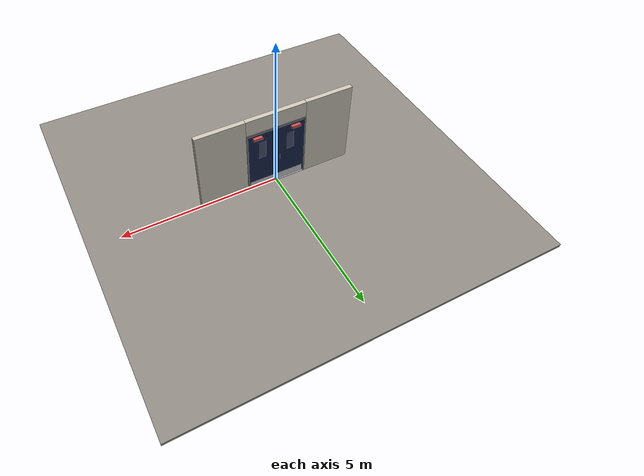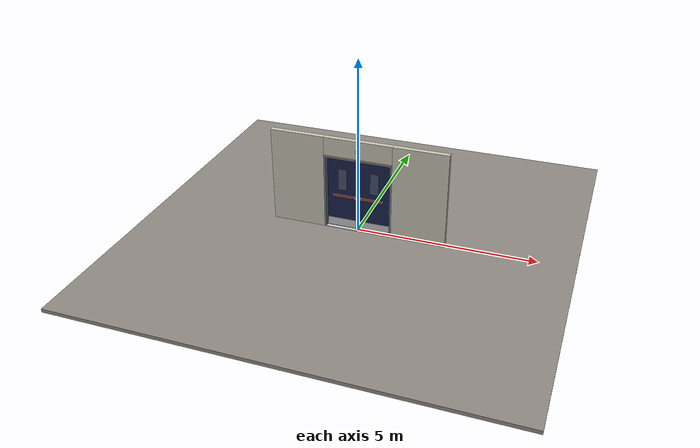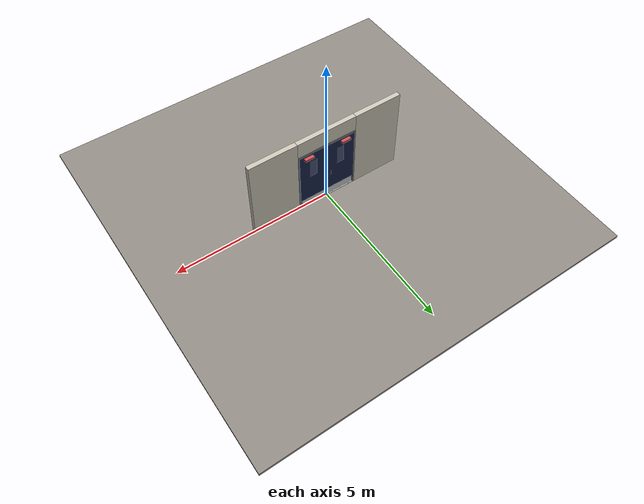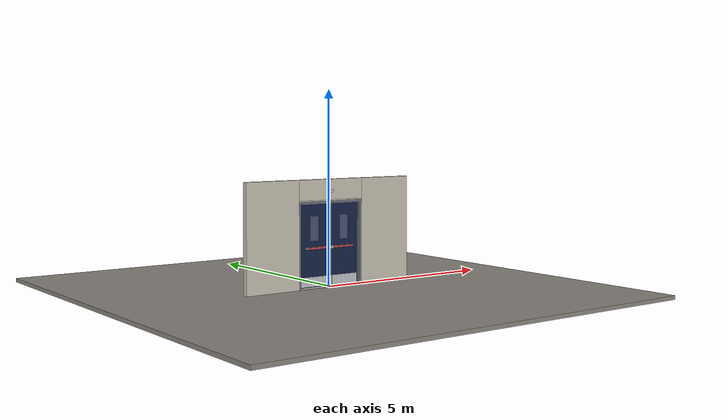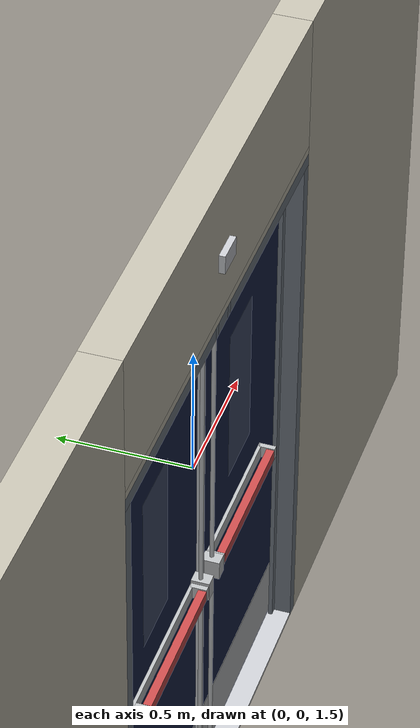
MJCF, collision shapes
<?xml version="1.0" ?>
<mujoco model="db0871_swing_double_full">
  <compiler angle="radian" meshdir="../../hardware" texturedir="../../textures" autolimits="true" inertiafromgeom="false"/>
  <option timestep="0.002" integrator="implicitfast" cone="elliptic" impratio="10" noslip_iterations="3">
    <flag multiccd="enable"/>
  </option>
  <size memory="16M"/>
  <default>
    <geom condim="4" solref="0.005 1" solimp="0.95 0.99 0.001"/>
    <joint solreflimit="0.005 1" solimplimit="0.95 0.99 0.001"/>
    <tendon solreflimit="0.005 1"/>
    <equality solref="0.002 1"/>
  </default>
  <visual>
    <headlight ambient="0.4 0.4 0.4" diffuse="0.7 0.7 0.7" specular="0.2 0.2 0.2"/>
    <quality shadowsize="4096"/>
    <map znear="0.01" zfar="60"/>
  </visual>
  <asset>
    <mesh name="closer_body_fdc4667657" file="closer_body_fdc4667657.obj"/>
    <mesh name="exit_sign_a6449bfa2c" file="exit_sign_a6449bfa2c.obj"/>
    <mesh name="hinge_e22b26c0c1" file="hinge_e22b26c0c1.obj"/>
    <mesh name="hinge_jamb_e1d088f8dc" file="hinge_jamb_e1d088f8dc.obj"/>
    <mesh name="pull_1e5d69a91a" file="pull_1e5d69a91a.obj"/>
    <mesh name="touchbar_pad_2729a067b4" file="touchbar_pad_2729a067b4.obj"/>
    <material name="mat_floor" rgba="0.55 0.53 0.5 1" specular="0.2" shininess="0.15" reflectance="0"/>
    <material name="mat_wall" rgba="0.78 0.76 0.7 1" specular="0.2" shininess="0.1" reflectance="0"/>
    <material name="mat_leaf_a" rgba="0.09 0.13 0.28 1" specular="0.23" shininess="0.64" reflectance="0.02"/>
    <material name="mat_glass" rgba="0.85 0.92 0.95 0.25" specular="0.2" shininess="0.95" reflectance="0.1"/>
    <material name="mat_hinge" rgba="0.65 0.66 0.68 1" specular="0.74" shininess="0.5" reflectance="0.36"/>
    <material name="mat_op_stainless" rgba="0.75 0.76 0.77 1" specular="0.8" shininess="0.65" reflectance="0.4"/>
    <material name="mat_bolt" rgba="0.75 0.76 0.77 1" specular="0.8" shininess="0.65" reflectance="0.4"/>
    <material name="mat_closer" rgba="0.22 0.17 0.13 1" specular="0.8" shininess="0.6" reflectance="0.4"/>
    <material name="mat_kick" rgba="0.75 0.76 0.77 1" specular="0.8" shininess="0.65" reflectance="0.4"/>
    <material name="mat_exit_sign" rgba="0.85 0.1 0.1 1" specular="0.2" shininess="0.6" reflectance="0"/>
    <material name="mat_sign_bracket" rgba="0.8 0.81 0.83 1" specular="0.8" shininess="0.6" reflectance="0.4"/>
    <material name="mat_leaf_b" rgba="0.09 0.13 0.28 1" specular="0.23" shininess="0.64" reflectance="0.02"/>
    <material name="mat_frame" rgba="0.45 0.48 0.52 1" specular="0.32" shininess="0.6" reflectance="0.08"/>
    <material name="mat_threshold" rgba="0.8 0.81 0.83 1" specular="0.8" shininess="0.6" reflectance="0.4"/>
    <material name="mat_astragal" rgba="0.8 0.81 0.83 1" specular="0.8" shininess="0.6" reflectance="0.4"/>
    <texture name="skybox" type="skybox" builtin="gradient" rgb1="0.6 0.7 0.85" rgb2="0.9 0.92 0.95" width="256" height="256"/>
  </asset>
  <worldbody>
    <light name="sun" pos="1.5 -2.5 4" dir="-0.3 0.5 -0.8" directional="true" diffuse="0.8 0.8 0.8" specular="0.3 0.3 0.3" castshadow="true"/>
    <light name="fill" pos="-1.5 2.5 3" dir="0.3 -0.5 -0.7" directional="true" diffuse="0.35 0.35 0.4" castshadow="false"/>
    <camera name="robot_view" pos="0 -2.668312 1.812087" xyaxes="1 0 0 0 0.26963 0.962964" fovy="52"/>
    <camera name="far_view" pos="0 2.607312 1.812087" xyaxes="-1 0 0 0 -0.26963 0.962964" fovy="52"/>
    <camera name="iso" pos="-2.004737 -2.246262 2.234138" xyaxes="0.741536 -0.670913 0 0.242917 0.268487 0.932151" fovy="46"/>
    <camera name="detail_handle" pos="0.0885 -0.718 1.296" xyaxes="0.97561 0.219512 0 -0.070934 0.315262 0.94635" fovy="38"/>
    <geom name="floor" type="box" size="6 6 0.05" pos="0 0 -0.05" material="mat_floor" group="0" contype="1" conaffinity="1" friction="0.8 0.005 0.0001" density="2400"/>
    <geom name="wall_left" type="box" size="0.76575 0.0725 1.3735" pos="-1.73425 -0.0305 1.3735" material="mat_wall" group="0" contype="1" conaffinity="1" friction="0.6 0.005 0.0001" density="800"/>
    <geom name="wall_right" type="box" size="0.76575 0.0725 1.3735" pos="1.73425 -0.0305 1.3735" material="mat_wall" group="0" contype="1" conaffinity="1" friction="0.6 0.005 0.0001" density="800"/>
    <geom name="wall_header" type="box" size="0.9685 0.0725 0.26" pos="0 -0.0305 2.487" material="mat_wall" group="0" contype="1" conaffinity="1" friction="0.6 0.005 0.0001" density="800"/>
    <geom name="hinge_0_jamb" type="mesh" mesh="hinge_jamb_e1d088f8dc" pos="-0.9155 0.029 0.279" quat="0 1 0 0" material="mat_hinge" group="1" contype="0" conaffinity="0" density="7850"/>
    <geom name="hinge_1_jamb" type="mesh" mesh="hinge_jamb_e1d088f8dc" pos="-0.9155 0.029 1.086" quat="0 1 0 0" material="mat_hinge" group="1" contype="0" conaffinity="0" density="7850"/>
    <geom name="hinge_2_jamb" type="mesh" mesh="hinge_jamb_e1d088f8dc" pos="-0.9155 0.029 1.963" quat="0 1 0 0" material="mat_hinge" group="1" contype="0" conaffinity="0" density="7850"/>
    <geom name="leaf_a_bottom_strike_plate" type="box" size="0.0255 0.0255 0.00075" pos="-0.0615 0 0.01375" material="mat_bolt" group="0" contype="1" conaffinity="1" friction="0.6 0.005 0.0001" density="7850"/>
    <geom name="leaf_a_bottom_strike_p" type="box" size="0.0215 0.004 0.00575" pos="-0.0615 0.0145 0.02025" material="mat_bolt" group="0" contype="1" conaffinity="1" friction="0.6 0.005 0.0001" density="7850"/>
    <geom name="leaf_a_bottom_strike_n" type="box" size="0.0215 0.004 0.00575" pos="-0.0615 -0.0145 0.02025" material="mat_bolt" group="0" contype="1" conaffinity="1" friction="0.6 0.005 0.0001" density="7850"/>
    <geom name="leaf_a_bottom_strike_e" type="box" size="0.004 0.0215 0.00575" pos="-0.047 0 0.02025" material="mat_bolt" group="0" contype="1" conaffinity="1" friction="0.6 0.005 0.0001" density="7850"/>
    <geom name="exit_sign" type="mesh" mesh="exit_sign_a6449bfa2c" pos="0 -0.15 2.447" material="mat_exit_sign" group="2" contype="0" conaffinity="0" density="500"/>
    <geom name="exit_sign_bracket" type="box" size="0.05775 0.0115 0.035" pos="0 -0.114 2.447" material="mat_sign_bracket" group="2" contype="0" conaffinity="0" density="7850"/>
    <geom name="hinge_0_jamb_2" type="mesh" mesh="hinge_jamb_e1d088f8dc" pos="0.9155 0.029 0.279" quat="0 0 0 1" material="mat_hinge" group="1" contype="0" conaffinity="0" density="7850"/>
    <geom name="hinge_1_jamb_2" type="mesh" mesh="hinge_jamb_e1d088f8dc" pos="0.9155 0.029 1.086" quat="0 0 0 1" material="mat_hinge" group="1" contype="0" conaffinity="0" density="7850"/>
    <geom name="hinge_2_jamb_2" type="mesh" mesh="hinge_jamb_e1d088f8dc" pos="0.9155 0.029 1.963" quat="0 0 0 1" material="mat_hinge" group="1" contype="0" conaffinity="0" density="7850"/>
    <geom name="leaf_b_bottom_strike_plate" type="box" size="0.0255 0.0255 0.00075" pos="0.0615 0 0.01375" material="mat_bolt" group="0" contype="1" conaffinity="1" friction="0.6 0.005 0.0001" density="7850"/>
    <geom name="leaf_b_bottom_strike_p" type="box" size="0.0215 0.004 0.00575" pos="0.0615 0.0145 0.02025" material="mat_bolt" group="0" contype="1" conaffinity="1" friction="0.6 0.005 0.0001" density="7850"/>
    <geom name="leaf_b_bottom_strike_n" type="box" size="0.0215 0.004 0.00575" pos="0.0615 -0.0145 0.02025" material="mat_bolt" group="0" contype="1" conaffinity="1" friction="0.6 0.005 0.0001" density="7850"/>
    <geom name="leaf_b_bottom_strike_e" type="box" size="0.004 0.0215 0.00575" pos="0.047 0 0.02025" material="mat_bolt" group="0" contype="1" conaffinity="1" friction="0.6 0.005 0.0001" density="7850"/>
    <geom name="jamb_l" type="box" size="0.025 0.0725 1.0735" pos="-0.9435 -0.0305 1.0735" material="mat_frame" group="0" contype="1" conaffinity="1" friction="0.6 0.005 0.0001" density="300"/>
    <geom name="jamb_r" type="box" size="0.025 0.0725 1.0735" pos="0.9435 -0.0305 1.0735" material="mat_frame" group="0" contype="1" conaffinity="1" friction="0.6 0.005 0.0001" density="300"/>
    <geom name="jamb_head_pwall_-61_n" type="box" size="0.0135 0.046 0.025" pos="-0.0615 -0.057 2.172" material="mat_frame" group="0" contype="1" conaffinity="1" friction="0.6 0.005 0.0001" density="300"/>
    <geom name="jamb_head_pwall_-61_p" type="box" size="0.0135 0.0155 0.025" pos="-0.0615 0.0265 2.172" material="mat_frame" group="0" contype="1" conaffinity="1" friction="0.6 0.005 0.0001" density="300"/>
    <geom name="jamb_head_pback_-61" type="box" size="0.0135 0.011 0.0135" pos="-0.0615 0 2.1835" material="mat_frame" group="0" contype="1" conaffinity="1" friction="0.6 0.005 0.0001" density="300"/>
    <geom name="jamb_head_pwall_61_n" type="box" size="0.0135 0.046 0.025" pos="0.0615 -0.057 2.172" material="mat_frame" group="0" contype="1" conaffinity="1" friction="0.6 0.005 0.0001" density="300"/>
    <geom name="jamb_head_pwall_61_p" type="box" size="0.0135 0.0155 0.025" pos="0.0615 0.0265 2.172" material="mat_frame" group="0" contype="1" conaffinity="1" friction="0.6 0.005 0.0001" density="300"/>
    <geom name="jamb_head_pback_61" type="box" size="0.0135 0.011 0.0135" pos="0.0615 0 2.1835" material="mat_frame" group="0" contype="1" conaffinity="1" friction="0.6 0.005 0.0001" density="300"/>
    <geom name="jamb_head_0" type="box" size="0.44675 0.0725 0.025" pos="-0.52175 -0.0305 2.172" material="mat_frame" group="0" contype="1" conaffinity="1" friction="0.6 0.005 0.0001" density="300"/>
    <geom name="jamb_head_1" type="box" size="0.048 0.0725 0.025" pos="0 -0.0305 2.172" material="mat_frame" group="0" contype="1" conaffinity="1" friction="0.6 0.005 0.0001" density="300"/>
    <geom name="jamb_head_2" type="box" size="0.44675 0.0725 0.025" pos="0.52175 -0.0305 2.172" material="mat_frame" group="0" contype="1" conaffinity="1" friction="0.6 0.005 0.0001" density="300"/>
    <geom name="head_stud" type="box" size="0.9685 0.0725 0.015" pos="0 -0.0305 2.212" material="mat_wall" group="0" contype="1" conaffinity="1" friction="0.6 0.005 0.0001" density="500"/>
    <geom name="stop_l" type="box" size="0.015 0.008 1.0735" pos="-0.9035 -0.0305 1.0735" material="mat_frame" group="0" contype="1" conaffinity="1" friction="0.6 0.005 0.0001" density="300"/>
    <geom name="stop_r" type="box" size="0.015 0.008 1.0735" pos="0.9035 -0.0305 1.0735" material="mat_frame" group="0" contype="1" conaffinity="1" friction="0.6 0.005 0.0001" density="300"/>
    <geom name="stop_head" type="box" size="0.9185 0.008 0.015" pos="0 -0.0305 2.132" material="mat_frame" group="0" contype="1" conaffinity="1" friction="0.6 0.005 0.0001" density="300"/>
    <geom name="threshold" type="box" size="0.9685 0.0725 0.0065" pos="0 -0.0305 0.0065" material="mat_threshold" group="0" contype="1" conaffinity="1" friction="0.5 0.005 0.0001" density="2700"/>
    <site name="approach_point" pos="0 -1.5 0" quat="1 0 0 0" size="0.05" rgba="0.2 0.9 0.2 0.5" group="4"/>
    <site name="goal_point" pos="0 1.5 0" quat="1 0 0 0" size="0.05" rgba="0.2 0.9 0.2 0.5" group="4"/>
    <site name="door_plane_center" pos="0 0 1.0735" quat="1 0 0 0" size="0.02" rgba="0.2 0.9 0.2 0.5" group="4"/>
    <site name="approach_point_2" pos="0 -1.5 0" quat="1 0 0 0" size="0.05" rgba="0.2 0.9 0.2 0.5" group="4"/>
    <site name="goal_point_2" pos="0 1.5 0" quat="1 0 0 0" size="0.05" rgba="0.2 0.9 0.2 0.5" group="4"/>
    <site name="door_plane_center_2" pos="0 0 1.0735" quat="1 0 0 0" size="0.02" rgba="0.2 0.9 0.2 0.5" group="4"/>
    <site name="approach_point_3" pos="0 -1.5 0" quat="1 0 0 0" size="0.05" rgba="0.2 0.9 0.2 0.5" group="4"/>
    <site name="goal_point_3" pos="0 1.5 0" quat="1 0 0 0" size="0.05" rgba="0.2 0.9 0.2 0.5" group="4"/>
    <site name="door_plane_center_3" pos="0 0 1.0735" quat="1 0 0 0" size="0.02" rgba="0.2 0.9 0.2 0.5" group="4"/>
    <body name="leaf_a" pos="-0.9185 0 0">
      <inertial pos="0.447559 0.012027 1.211066" mass="48.624379" quat="-0.46523 0.497353 0.514284 0.521262" diaginertia="3.226525782 24.027294551 27.151914703"/>
      <joint name="leaf_a_hinge" type="hinge" axis="0 0 1" pos="0.003 0.029 0" limited="true" range="0 1.570796" damping="12.268966" frictionloss="0.258688" stiffness="15.177015" springref="-1.90156" armature="0.02"/>
      <geom name="leaf_a_slab" type="box" size="0.457 0.022 1.057" pos="0.46 0 1.086" material="mat_leaf_a" group="0" contype="1" conaffinity="1" friction="0.4 0.005 0.0001" density="1"/>
      <geom name="leaf_a_glass_0" type="box" size="0.125 0.0228 0.3171" pos="0.46 0 1.5088" material="mat_glass" group="1" contype="0" conaffinity="0" density="1"/>
      <geom name="hinge_0" type="mesh" mesh="hinge_e22b26c0c1" pos="0.003 0.029 0.279" quat="0 1 0 0" material="mat_hinge" group="1" contype="0" conaffinity="0" density="7850"/>
      <geom name="hinge_1" type="mesh" mesh="hinge_e22b26c0c1" pos="0.003 0.029 1.086" quat="0 1 0 0" material="mat_hinge" group="1" contype="0" conaffinity="0" density="7850"/>
      <geom name="hinge_2" type="mesh" mesh="hinge_e22b26c0c1" pos="0.003 0.029 1.963" quat="0 1 0 0" material="mat_hinge" group="1" contype="0" conaffinity="0" density="7850"/>
      <geom name="leaf_a_exit_device_rail" type="box" size="0.31705 0.006 0.025" pos="0.51995 -0.028 1.016" material="mat_op_stainless" group="0" contype="1" conaffinity="1" friction="0.6 0.005 0.0001" density="3000"/>
      <geom name="leaf_a_exit_device_rail_end_n" type="box" size="0.01 0.0325 0.025" pos="0.2129 -0.0545 1.016" material="mat_op_stainless" group="0" contype="1" conaffinity="1" friction="0.6 0.005 0.0001" density="3000"/>
      <geom name="leaf_a_exit_device_rail_end_p" type="box" size="0.01 0.0325 0.025" pos="0.827 -0.0545 1.016" material="mat_op_stainless" group="0" contype="1" conaffinity="1" friction="0.6 0.005 0.0001" density="3000"/>
      <geom name="leaf_a_exit_device_case" type="box" size="0.025 0.034125 0.0375" pos="0.862 -0.056125 1.016" material="mat_op_stainless" group="0" contype="1" conaffinity="1" friction="0.6 0.005 0.0001" density="3000"/>
      <geom name="leaf_a_exit_device_rod_top" type="cylinder" size="0.008 0.52975" pos="0.857 -0.052 1.58325" material="mat_op_stainless" group="1" contype="0" conaffinity="0" density="7850"/>
      <geom name="leaf_a_exit_device_rod_bot" type="cylinder" size="0.008 0.45975" pos="0.857 -0.052 0.51875" material="mat_op_stainless" group="1" contype="0" conaffinity="0" density="7850"/>
      <geom name="leaf_a_far_pull_p" type="mesh" mesh="pull_1e5d69a91a" pos="0.827 0.022 1.016" quat="-0.707107 0.707107 0 0" material="mat_op_stainless" group="1" contype="0" conaffinity="0" density="3000"/>
      <geom name="leaf_a_far_pull_col_p" type="capsule" size="0.0095 0.08" pos="0.827 0.082 1.016" material="mat_op_stainless" group="3" contype="1" conaffinity="1" rgba="0.8 0.3 0.3 0.25" friction="0.7 0.01 0.0001" density="3000"/>
      <geom name="closer_body" type="mesh" mesh="closer_body_fdc4667657" pos="0.3 0.022 2.034" quat="-0.707107 0.707107 0 0" material="mat_closer" group="1" contype="0" conaffinity="0" density="2000"/>
      <geom name="closer_body_col" type="box" size="0.145 0.05 0.035" pos="0.3 0.072 2.034" material="mat_closer" group="3" contype="1" conaffinity="1" rgba="0.8 0.3 0.3 0.25" friction="0.6 0.005 0.0001" density="2000"/>
      <geom name="kick_plate_n" type="box" size="0.427 0.0008 0.125" pos="0.46 -0.0228 0.164" material="mat_kick" group="2" contype="0" conaffinity="0" density="7900"/>
      <geom name="kick_plate_p" type="box" size="0.427 0.0008 0.125" pos="0.46 0.0228 0.164" material="mat_kick" group="2" contype="0" conaffinity="0" density="7900"/>
      <site name="leaf_a_far_pull_grip_p" pos="0.827 0.082 1.016" quat="1 0 0 0" size="0.012" rgba="0.2 0.9 0.2 0.5" group="4"/>
      <site name="leaf_a_edge_mid" pos="0.917 0 1.057" quat="1 0 0 0" size="0.02" rgba="0.2 0.9 0.2 0.5" group="4"/>
      <body name="leaf_a_exit_device" pos="0.51995 -0.022 1.016">
        <inertial pos="0 -0.05 0" mass="4.76361" quat="0 0 0.707107 0.707107" diaginertia="0.00116113 0.137653089 0.138099678"/>
        <joint name="leaf_a_exit_device_slide" type="slide" axis="0 1 0" limited="true" range="0 0.016" damping="165.880125" frictionloss="0.5" stiffness="1400" springref="-0.015714" armature="0.15"/>
        <geom name="leaf_a_exit_device_pad" type="mesh" mesh="touchbar_pad_2729a067b4" pos="0 0 0" quat="0.707107 0.707107 0 0" material="mat_op_stainless" group="1" contype="0" conaffinity="0" density="3000"/>
        <geom name="leaf_a_exit_device_pad_col" type="box" size="0.29405 0.015 0.0225" pos="0 -0.05 0" material="mat_op_stainless" group="3" contype="1" conaffinity="1" rgba="0.8 0.3 0.3 0.25" friction="0.8 0.01 0.0001" density="3000"/>
        <site name="leaf_a_exit_device_push" pos="0 -0.065 0" quat="1 0 0 0" size="0.015" rgba="0.2 0.9 0.2 0.5" group="4"/>
      </body>
      <body name="leaf_a_top_latch" pos="0.857 0 2.143">
        <inertial pos="0 0 -0.0155" mass="0.151026" quat="0.707107 0 0.707107 0" diaginertia="0.00000654 0.000053442 0.000053442"/>
        <joint name="leaf_a_top_latch_slide" type="slide" axis="0 0 -1" limited="true" range="0 0.019" damping="2" frictionloss="0.3" stiffness="800" springref="-0.01" armature="0.1"/>
        <geom name="leaf_a_top_latch_capsule" type="capsule" size="0.0095 0.025" pos="0 0 -0.0155" material="mat_bolt" group="0" contype="1" conaffinity="1" friction="0.2 0.005 0.0001" density="8500"/>
      </body>
      <body name="leaf_a_bottom_latch" pos="0.857 0 0.03">
        <inertial pos="0 0 0.0185" mass="0.136566" quat="0.707107 0 0.707107 0" diaginertia="0.000005887 0.000040162 0.000040162"/>
        <joint name="leaf_a_bottom_latch_slide" type="slide" axis="0 0 1" limited="true" range="0 0.013" damping="2" frictionloss="0.3" stiffness="800" springref="-0.01" armature="0.1"/>
        <geom name="leaf_a_bottom_latch_capsule" type="capsule" size="0.0095 0.022" pos="0 0 0.0185" material="mat_bolt" group="0" contype="1" conaffinity="1" friction="0.2 0.005 0.0001" density="8500"/>
      </body>
    </body>
    <body name="leaf_b" pos="0.9185 0 0">
      <inertial pos="-0.470805 0.009963 1.203992" mass="49.265324" quat="0.524472 -0.514006 -0.497119 -0.462168" diaginertia="3.607054671 24.103130396 27.609437452"/>
      <joint name="leaf_b_hinge" type="hinge" axis="0 0 -1" pos="-0.003 0.029 0" limited="true" range="0 1.570796" damping="12.268966" frictionloss="0.258688" stiffness="15.177015" springref="-1.90156" armature="0.02"/>
      <geom name="leaf_b_slab" type="box" size="0.457 0.022 1.057" pos="-0.46 0 1.086" material="mat_leaf_b" group="0" contype="1" conaffinity="1" friction="0.4 0.005 0.0001" density="1"/>
      <geom name="leaf_b_glass_0" type="box" size="0.125 0.0228 0.3171" pos="-0.46 0 1.5088" material="mat_glass" group="1" contype="0" conaffinity="0" density="1"/>
      <geom name="hinge_0_2" type="mesh" mesh="hinge_e22b26c0c1" pos="-0.003 0.029 0.279" quat="0 0 0 1" material="mat_hinge" group="1" contype="0" conaffinity="0" density="7850"/>
      <geom name="hinge_1_2" type="mesh" mesh="hinge_e22b26c0c1" pos="-0.003 0.029 1.086" quat="0 0 0 1" material="mat_hinge" group="1" contype="0" conaffinity="0" density="7850"/>
      <geom name="hinge_2_2" type="mesh" mesh="hinge_e22b26c0c1" pos="-0.003 0.029 1.963" quat="0 0 0 1" material="mat_hinge" group="1" contype="0" conaffinity="0" density="7850"/>
      <geom name="leaf_b_exit_device_rail" type="box" size="0.31705 0.006 0.025" pos="-0.51995 -0.028 1.016" material="mat_op_stainless" group="0" contype="1" conaffinity="1" friction="0.6 0.005 0.0001" density="3000"/>
      <geom name="leaf_b_exit_device_rail_end_n" type="box" size="0.01 0.0325 0.025" pos="-0.827 -0.0545 1.016" material="mat_op_stainless" group="0" contype="1" conaffinity="1" friction="0.6 0.005 0.0001" density="3000"/>
      <geom name="leaf_b_exit_device_rail_end_p" type="box" size="0.01 0.0325 0.025" pos="-0.2129 -0.0545 1.016" material="mat_op_stainless" group="0" contype="1" conaffinity="1" friction="0.6 0.005 0.0001" density="3000"/>
      <geom name="leaf_b_exit_device_case" type="box" size="0.025 0.034125 0.0375" pos="-0.862 -0.056125 1.016" material="mat_op_stainless" group="0" contype="1" conaffinity="1" friction="0.6 0.005 0.0001" density="3000"/>
      <geom name="leaf_b_exit_device_rod_top" type="cylinder" size="0.008 0.52975" pos="-0.857 -0.052 1.58325" material="mat_op_stainless" group="1" contype="0" conaffinity="0" density="7850"/>
      <geom name="leaf_b_exit_device_rod_bot" type="cylinder" size="0.008 0.45975" pos="-0.857 -0.052 0.51875" material="mat_op_stainless" group="1" contype="0" conaffinity="0" density="7850"/>
      <geom name="leaf_b_far_pull_p" type="mesh" mesh="pull_1e5d69a91a" pos="-0.827 0.022 1.016" quat="0 0 0.707107 0.707107" material="mat_op_stainless" group="1" contype="0" conaffinity="0" density="3000"/>
      <geom name="leaf_b_far_pull_col_p" type="capsule" size="0.0095 0.08" pos="-0.827 0.082 1.016" material="mat_op_stainless" group="3" contype="1" conaffinity="1" rgba="0.8 0.3 0.3 0.25" friction="0.7 0.01 0.0001" density="3000"/>
      <geom name="closer_body_2" type="mesh" mesh="closer_body_fdc4667657" pos="-0.3 0.022 2.034" quat="0 0 0.707107 0.707107" material="mat_closer" group="1" contype="0" conaffinity="0" density="2000"/>
      <geom name="closer_body_col_2" type="box" size="0.145 0.05 0.035" pos="-0.3 0.072 2.034" material="mat_closer" group="3" contype="1" conaffinity="1" rgba="0.8 0.3 0.3 0.25" friction="0.6 0.005 0.0001" density="2000"/>
      <geom name="kick_plate_n_2" type="box" size="0.427 0.0008 0.125" pos="-0.46 -0.0228 0.164" material="mat_kick" group="2" contype="0" conaffinity="0" density="7900"/>
      <geom name="kick_plate_p_2" type="box" size="0.427 0.0008 0.125" pos="-0.46 0.0228 0.164" material="mat_kick" group="2" contype="0" conaffinity="0" density="7900"/>
      <geom name="astragal" type="box" size="0.02 0.008 1.047" pos="-0.921 -0.03 1.067" material="mat_astragal" group="0" contype="1" conaffinity="1" friction="0.6 0.005 0.0001" density="2700"/>
      <site name="leaf_b_far_pull_grip_p" pos="-0.827 0.082 1.016" quat="1 0 0 0" size="0.012" rgba="0.2 0.9 0.2 0.5" group="4"/>
      <site name="leaf_b_edge_mid" pos="-0.917 0 1.057" quat="1 0 0 0" size="0.02" rgba="0.2 0.9 0.2 0.5" group="4"/>
      <body name="leaf_b_exit_device" pos="-0.51995 -0.022 1.016">
        <inertial pos="0 -0.05 0" mass="4.76361" quat="0 0 -0.707107 0.707107" diaginertia="0.00116113 0.137653089 0.138099678"/>
        <joint name="leaf_b_exit_device_slide" type="slide" axis="0 1 0" limited="true" range="0 0.016" damping="165.880125" frictionloss="0.5" stiffness="1400" springref="-0.015714" armature="0.15"/>
        <geom name="leaf_b_exit_device_pad" type="mesh" mesh="touchbar_pad_2729a067b4" pos="0 0 0" quat="0 0 -0.707107 0.707107" material="mat_op_stainless" group="1" contype="0" conaffinity="0" density="3000"/>
        <geom name="leaf_b_exit_device_pad_col" type="box" size="0.29405 0.015 0.0225" pos="0 -0.05 0" material="mat_op_stainless" group="3" contype="1" conaffinity="1" rgba="0.8 0.3 0.3 0.25" friction="0.8 0.01 0.0001" density="3000"/>
        <site name="leaf_b_exit_device_push" pos="0 -0.065 0" quat="1 0 0 0" size="0.015" rgba="0.2 0.9 0.2 0.5" group="4"/>
      </body>
      <body name="leaf_b_top_latch" pos="-0.857 0 2.143">
        <inertial pos="0 0 -0.0155" mass="0.151026" quat="0.707107 0 0.707107 0" diaginertia="0.00000654 0.000053442 0.000053442"/>
        <joint name="leaf_b_top_latch_slide" type="slide" axis="0 0 -1" limited="true" range="0 0.019" damping="2" frictionloss="0.3" stiffness="800" springref="-0.01" armature="0.1"/>
        <geom name="leaf_b_top_latch_capsule" type="capsule" size="0.0095 0.025" pos="0 0 -0.0155" material="mat_bolt" group="0" contype="1" conaffinity="1" friction="0.2 0.005 0.0001" density="8500"/>
      </body>
      <body name="leaf_b_bottom_latch" pos="-0.857 0 0.03">
        <inertial pos="0 0 0.0185" mass="0.136566" quat="0.707107 0 0.707107 0" diaginertia="0.000005887 0.000040162 0.000040162"/>
        <joint name="leaf_b_bottom_latch_slide" type="slide" axis="0 0 1" limited="true" range="0 0.013" damping="2" frictionloss="0.3" stiffness="800" springref="-0.01" armature="0.1"/>
        <geom name="leaf_b_bottom_latch_capsule" type="capsule" size="0.0095 0.022" pos="0 0 0.0185" material="mat_bolt" group="0" contype="1" conaffinity="1" friction="0.2 0.005 0.0001" density="8500"/>
      </body>
    </body>
  </worldbody>
  <tendon>
    <fixed name="leaf_a_top_latch_coupling" limited="true" range="0 10">
      <joint joint="leaf_a_top_latch_slide" coef="1"/>
      <joint joint="leaf_a_exit_device_slide" coef="-1.142857"/>
    </fixed>
    <fixed name="leaf_a_bottom_latch_coupling" limited="true" range="0 10">
      <joint joint="leaf_a_bottom_latch_slide" coef="1"/>
      <joint joint="leaf_a_exit_device_slide" coef="-0.781955"/>
    </fixed>
    <fixed name="leaf_b_top_latch_coupling" limited="true" range="0 10">
      <joint joint="leaf_b_top_latch_slide" coef="1"/>
      <joint joint="leaf_b_exit_device_slide" coef="-1.142857"/>
    </fixed>
    <fixed name="leaf_b_bottom_latch_coupling" limited="true" range="0 10">
      <joint joint="leaf_b_bottom_latch_slide" coef="1"/>
      <joint joint="leaf_b_exit_device_slide" coef="-0.781955"/>
    </fixed>
  </tendon>
  <sensor>
    <jointpos name="leaf_a_hinge_pos" joint="leaf_a_hinge"/>
    <jointvel name="leaf_a_hinge_vel" joint="leaf_a_hinge"/>
    <jointpos name="leaf_a_exit_device_slide_pos" joint="leaf_a_exit_device_slide"/>
    <jointvel name="leaf_a_exit_device_slide_vel" joint="leaf_a_exit_device_slide"/>
    <jointpos name="leaf_a_top_latch_slide_pos" joint="leaf_a_top_latch_slide"/>
    <jointvel name="leaf_a_top_latch_slide_vel" joint="leaf_a_top_latch_slide"/>
    <jointpos name="leaf_a_bottom_latch_slide_pos" joint="leaf_a_bottom_latch_slide"/>
    <jointvel name="leaf_a_bottom_latch_slide_vel" joint="leaf_a_bottom_latch_slide"/>
    <jointpos name="leaf_b_hinge_pos" joint="leaf_b_hinge"/>
    <jointvel name="leaf_b_hinge_vel" joint="leaf_b_hinge"/>
    <jointpos name="leaf_b_exit_device_slide_pos" joint="leaf_b_exit_device_slide"/>
    <jointvel name="leaf_b_exit_device_slide_vel" joint="leaf_b_exit_device_slide"/>
    <jointpos name="leaf_b_top_latch_slide_pos" joint="leaf_b_top_latch_slide"/>
    <jointvel name="leaf_b_top_latch_slide_vel" joint="leaf_b_top_latch_slide"/>
    <jointpos name="leaf_b_bottom_latch_slide_pos" joint="leaf_b_bottom_latch_slide"/>
    <jointvel name="leaf_b_bottom_latch_slide_vel" joint="leaf_b_bottom_latch_slide"/>
  </sensor>
</mujoco>
